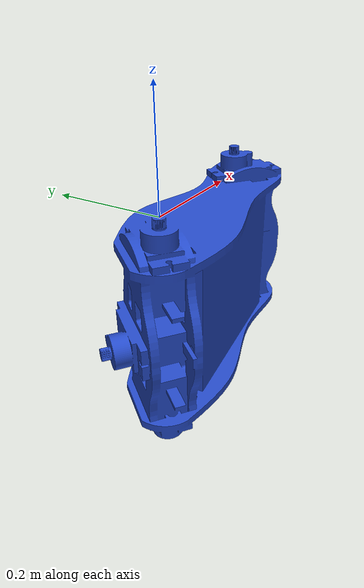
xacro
<?xml version="1.0"?>

<robot name="billi" xmlns:xacro="http://www.ros.org/wiki/xacro">

<!--BODY LINK -->
<link name="body">
	<visual>
		<origin rpy="0 0 0" xyz="0 0 0"/>
      		<geometry>
        		<mesh filename="package://billi_sim/models/meshes/body.stl" scale ="5 5 5"/>
      		</geometry>
      		<material name="blue"/>
    	</visual>
    	<collision>
		<origin rpy="0 0 0" xyz="0 0 0"/>
      		<geometry>
        		<mesh filename="package://billi_sim/models/meshes/body.stl" scale ="5 5 5"/>
      		</geometry>
    	</collision>
	<inertial>
		  <mass value="1.5"/>
		  <origin rpy="0 0 0" xyz="0 0 0.1"/>
		  <inertia ixx="0.192" ixy="-0.052" ixz="0" iyy="0.595" iyz="0" izz="0.459"/>
	</inertial>
</link>
<gazebo reference="body">
        <kp>1000.0</kp>
        <kd>1000.0</kd>
        <mu1>10.0</mu1>
        <mu2>10.0</mu2>
        <material>Gazebo/blue</material>
    </gazebo>

</robot>
